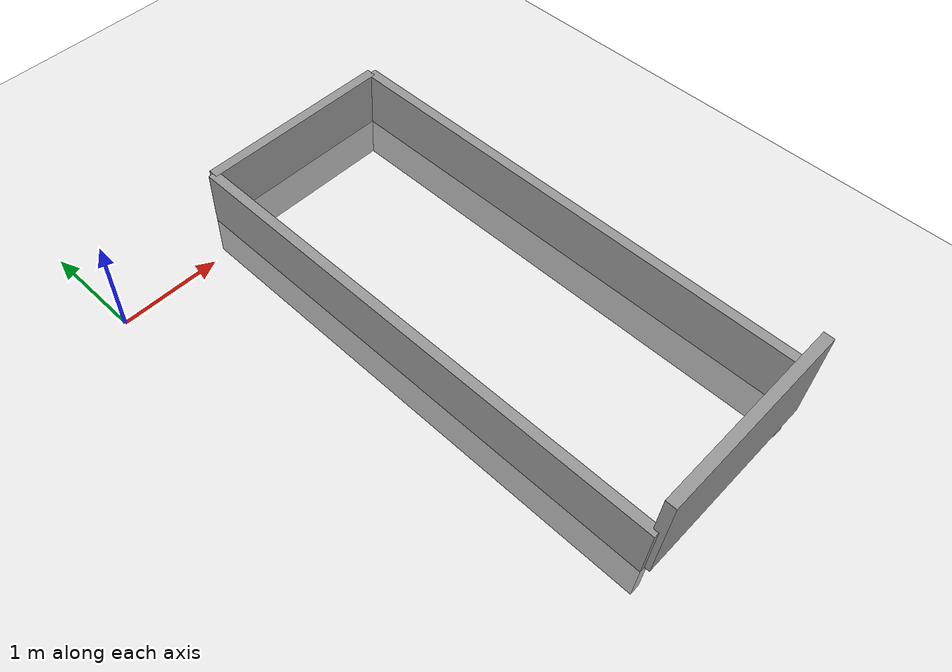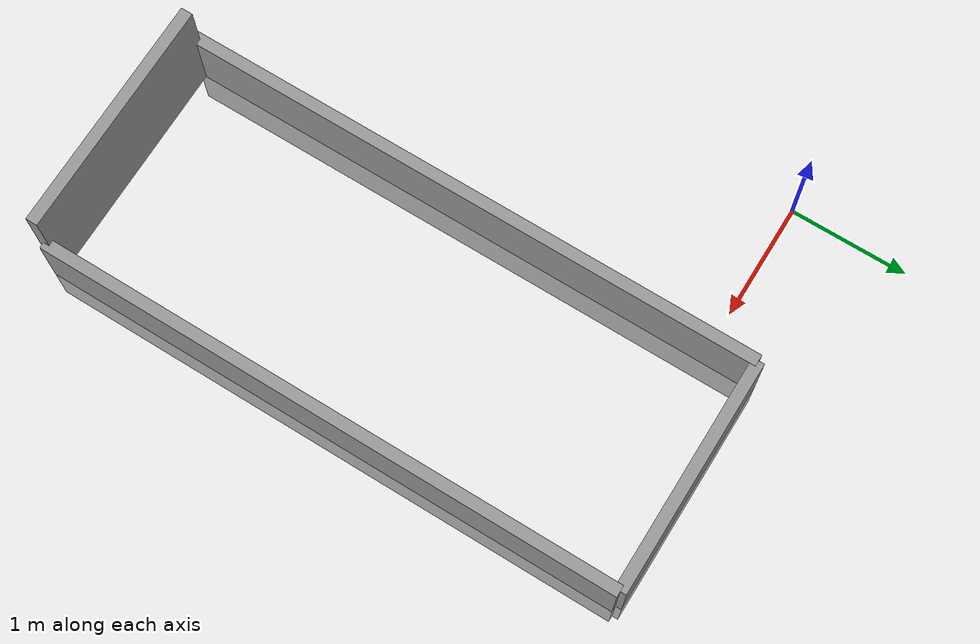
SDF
<sdf version="1.4">
 <world name="default">
  <light name="sun" type="directional">
   <pose>0 0 10 0 -0 0</pose>
   <diffuse>0.8 0.8 0.8 1</diffuse>
   <specular>0.2 0.2 0.2 1</specular>
   <attenuation>
    <range>1000</range>
    <constant>0.9</constant>
    <linear>0.01</linear>
    <quadratic>0.001</quadratic>
   </attenuation>
   <direction>0.5 0.1 -0.9</direction>
  </light>
  <model name="ground_plane">
   <static>1</static>
   <link name="link">
    <collision name="collision">
     <geometry><plane><normal>0 0 1</normal><size>100 100</size></plane></geometry>
     <surface><friction><ode><mu>100</mu><mu2>50</mu2></ode></friction></surface>
    </collision>
    <visual name="visual">
     <cast_shadows>0</cast_shadows>
     <geometry><plane><normal>0 0 1</normal><size>100 100</size></plane></geometry>
     <material>
      <script><uri>file://media/materials/scripts/gazebo.material</uri><name>Gazebo/Grey</name></script>
     </material>
    </visual>
    <velocity_decay><linear>0</linear><angular>0</angular></velocity_decay>
   </link>
  </model>
  <scene><ambient>0.4 0.4 0.4 1</ambient><background>0.7 0.7 0.7 1</background><shadows>0</shadows></scene>
  <physics type="ode">
   <max_step_size>0.01</max_step_size>
   <real_time_factor>1</real_time_factor>
   <real_time_update_rate>0</real_time_update_rate>
   <gravity>0 0 -9.8</gravity>
  </physics>
  <include><uri>model://walls</uri><pose>2.4 -2.1 0 0 0 0</pose></include>
 </world>
</sdf>

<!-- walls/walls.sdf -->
<sdf version="1.7">
    <model name="walls">
        <static>true</static>
        <link name="all_walls">
            <collision name="right_wall">
                <pose>1 0 0.075 0 0 0</pose>
                <geometry>
                    <box>
                        <size>0.1 5 1</size>
                    </box>
                </geometry>
            </collision>
            <visual name="right_wall">
                <pose>1 0 0.075 0 0 0</pose>
                <geometry>
                    <box>
                        <size>0.1 5 1</size>
                    </box>
                </geometry>
                <material>
                    <script>
                        <uri>file://media/materials/scripts/gazebo.material</uri>
                        <name>Gazebo/Grey</name>
                    </script>
                </material>
            </visual>
            <collision name="left_wall">
                <pose>-1 0 0.075 0 0 0</pose>
                <geometry>
                    <box>
                        <size>0.1 5 1</size>
                    </box>
                </geometry>
            </collision>
            <visual name="left_wall">
                <pose>-1 0 0.075 0 0 0</pose>
                <geometry>
                    <box>
                        <size>0.1 5 1</size>
                    </box>
                </geometry>
                <material>
                    <script>
                        <uri>file://media/materials/scripts/gazebo.material</uri>
                        <name>Gazebo/Grey</name>
                    </script>
                </material>
            </visual>
            <collision name="front_wall">
                <pose>0 2.5 0.075 0 0 0</pose>
                <geometry>
                    <box>
                        <size>2 0.1 1</size>
                    </box>
                </geometry>
            </collision>
            <visual name="front_wall">
                <pose>0 2.5 0.075 0 0 0</pose>
                <geometry>
                    <box>
                        <size>2 0.1 1</size>
                    </box>
                </geometry>
                <material>
                    <script>
                        <uri>file://media/materials/scripts/gazebo.material</uri>
                        <name>Gazebo/Grey</name>
                    </script>
                </material>
            </visual>
            <collision name="back_wall">
                <pose>0 -2.5 0.5 0 0 0</pose>
                <geometry>
                    <box>
                        <size>2 0.1 1</size>
                    </box>
                </geometry>
            </collision>
            <visual name="back_wall">
                <pose>0 -2.5 0.5 0 0 0</pose>
                <geometry>
                    <box>
                        <size>2 0.1 1</size>
                    </box>
                </geometry>
                <material>
                    <script>
                        <uri>file://media/materials/scripts/gazebo.material</uri>
                        <name>Gazebo/Grey</name>
                    </script>
                </material>
            </visual>
        </link>
    </model>
</sdf>
